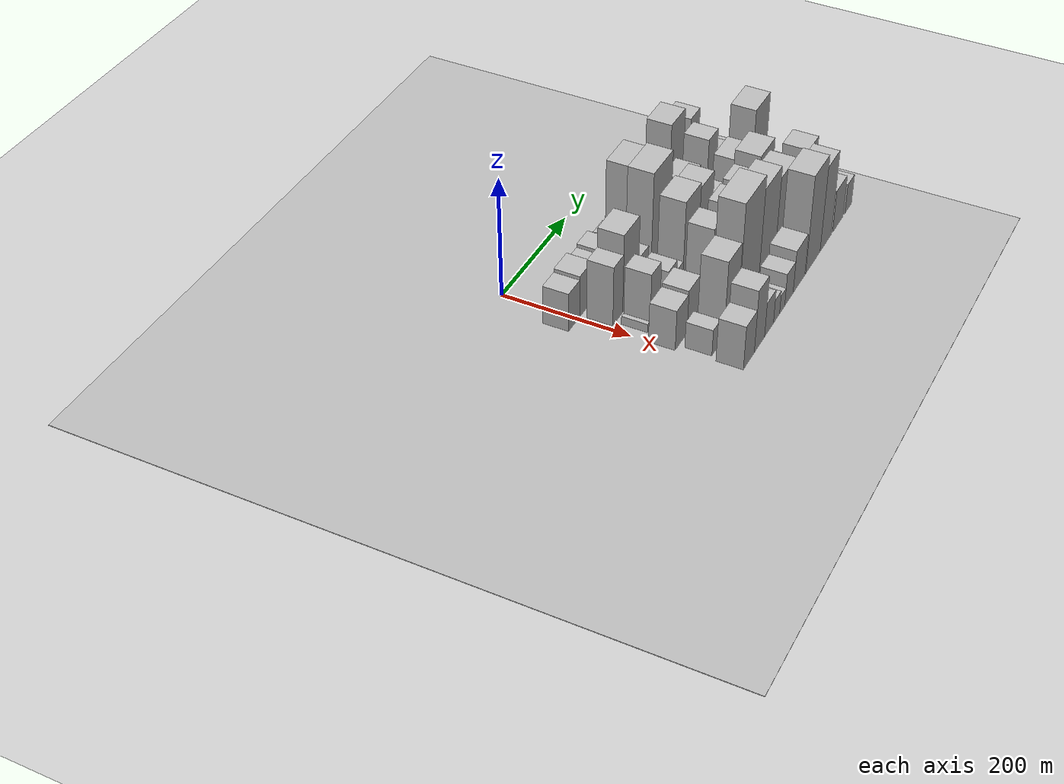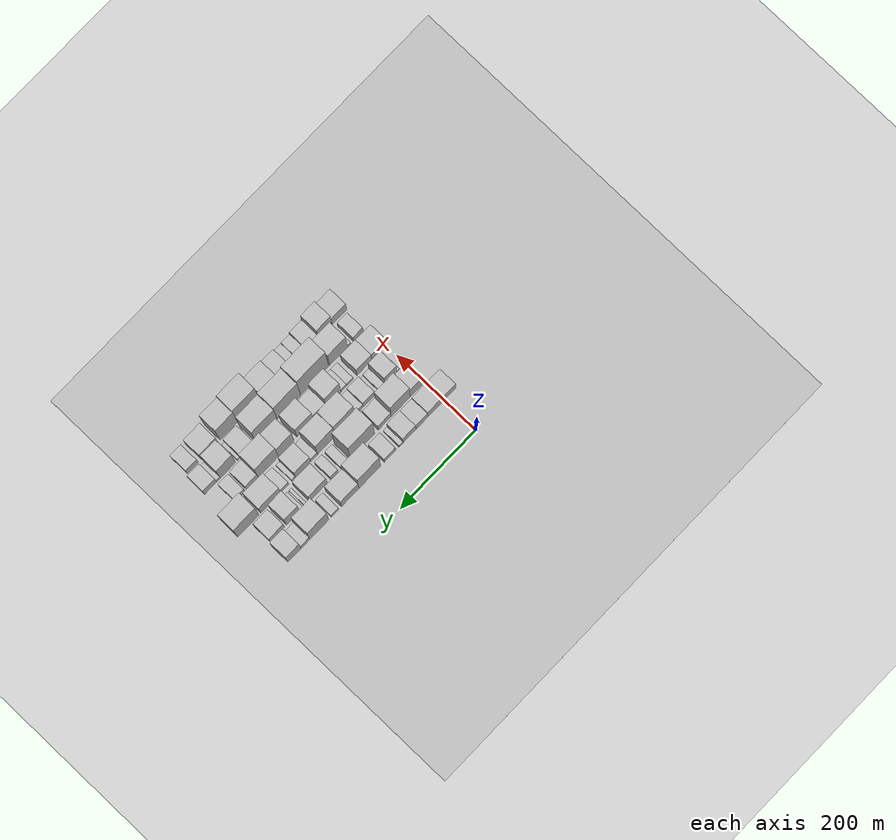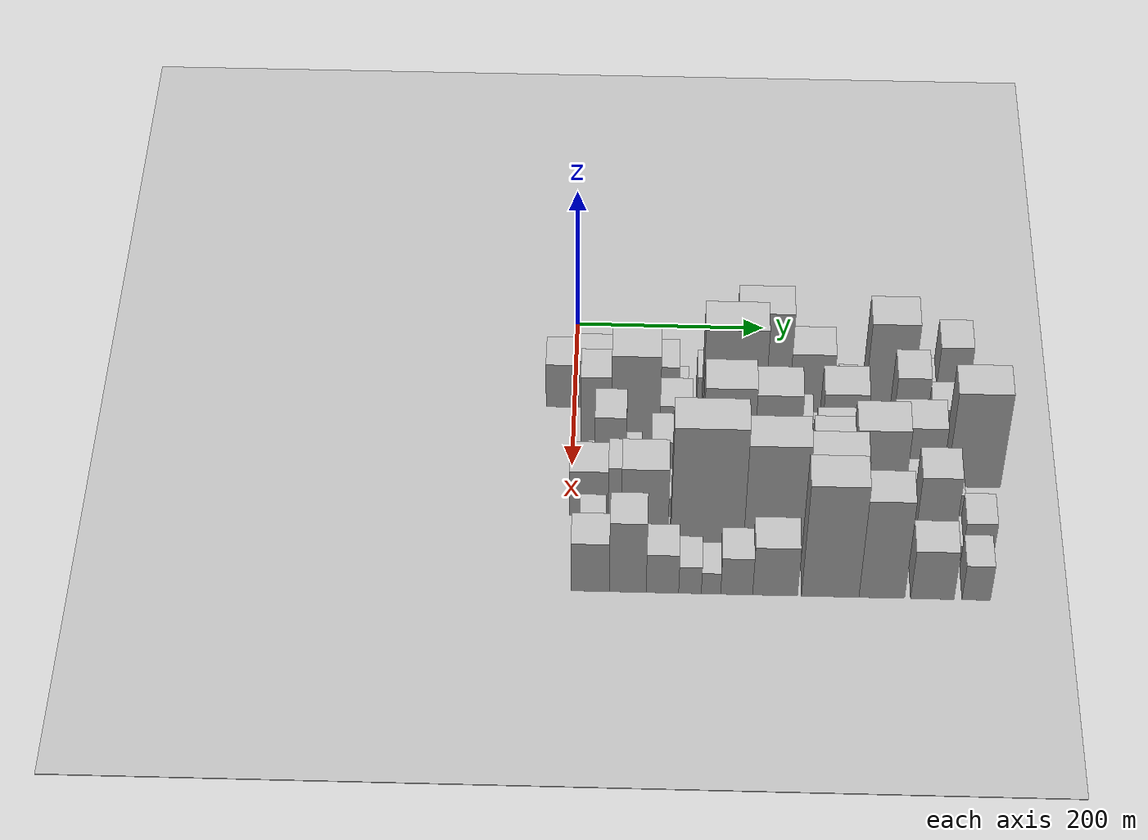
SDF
<sdf version="1.6">
 <world name="default">
  <include><name>ground_plane_1</name><uri>model://HANNAS_ground_plane</uri></include>
  <include>
   <name>ground_plane_2</name>
   <uri>model://HANNAS_ground_plane</uri>
   <pose>100 0 0  0 0 0</pose>
  </include>
  <model name="building_29">
   <static>1</static>
   <pose>100.0000 -12.7540 0 0.000000 0.000000 0.000000</pose>
   <link name="link">
    <pose>0 0 33.00 0 0 0</pose>
    <collision name="collision"><geometry><box><size>40.0000 34.4102 66.0000</size></box></geometry></collision>
    <visual name="visual">
     <cast_shadows>0</cast_shadows>
     <geometry><box><size>40.0000 34.4102 66.0000</size></box></geometry>
     <material>
      <script>
       <uri>model://HANNAS_wall/materials/scripts</uri>
       <uri>model://HANNAS_wall/materials/textures</uri>
       <name>vrc/HANNAS_wall</name>
      </script>
     </material>
    </visual>
   </link>
  </model>
  <model name="building_30">
   <static>1</static>
   <pose>100.0000 24.2124 0 0.000000 0.000000 0.000000</pose>
   <link name="link">
    <pose>0 0 36.00 0 0 0</pose>
    <collision name="collision"><geometry><box><size>40.0000 39.5224 72.0000</size></box></geometry></collision>
    <visual name="visual">
     <cast_shadows>0</cast_shadows>
     <geometry><box><size>40.0000 39.5224 72.0000</size></box></geometry>
     <material>
      <script>
       <uri>model://HANNAS_wall/materials/scripts</uri>
       <uri>model://HANNAS_wall/materials/textures</uri>
       <name>vrc/HANNAS_wall</name>
      </script>
     </material>
    </visual>
   </link>
  </model>
  <model name="building_31">
   <static>1</static>
   <pose>100.0000 59.7044 0 0.000000 0.000000 0.000000</pose>
   <link name="link">
    <pose>0 0 30.00 0 0 0</pose>
    <collision name="collision"><geometry><box><size>40.0000 31.4618 60.0000</size></box></geometry></collision>
    <visual name="visual">
     <cast_shadows>0</cast_shadows>
     <geometry><box><size>40.0000 31.4618 60.0000</size></box></geometry>
     <material>
      <script>
       <uri>model://HANNAS_wall/materials/scripts</uri>
       <uri>model://HANNAS_wall/materials/textures</uri>
       <name>vrc/HANNAS_wall</name>
      </script>
     </material>
    </visual>
   </link>
  </model>
  <model name="building_32">
   <static>1</static>
   <pose>100.0000 92.4821 0 0.000000 0.000000 0.000000</pose>
   <link name="link">
    <pose>0 0 33.00 0 0 0</pose>
    <collision name="collision"><geometry><box><size>40.0000 34.0936 66.0000</size></box></geometry></collision>
    <visual name="visual">
     <cast_shadows>0</cast_shadows>
     <geometry><box><size>40.0000 34.0936 66.0000</size></box></geometry>
     <material>
      <script>
       <uri>model://HANNAS_wall/materials/scripts</uri>
       <uri>model://HANNAS_wall/materials/textures</uri>
       <name>vrc/HANNAS_wall</name>
      </script>
     </material>
    </visual>
   </link>
  </model>
  <model name="building_33">
   <static>1</static>
   <pose>100.0000 114.5260 0 0.000000 0.000000 0.000000</pose>
   <link name="link">
    <pose>0 0 12.00 0 0 0</pose>
    <collision name="collision"><geometry><box><size>40.0000 9.9941 24.0000</size></box></geometry></collision>
    <visual name="visual">
     <cast_shadows>0</cast_shadows>
     <geometry><box><size>40.0000 9.9941 24.0000</size></box></geometry>
     <material>
      <script>
       <uri>model://HANNAS_wall/materials/scripts</uri>
       <uri>model://HANNAS_wall/materials/textures</uri>
       <name>vrc/HANNAS_wall</name>
      </script>
     </material>
    </visual>
   </link>
  </model>
  <model name="building_34">
   <static>1</static>
   <pose>100.0000 143.4806 0 0.000000 0.000000 0.000000</pose>
   <link name="link">
    <pose>0 0 25.50 0 0 0</pose>
    <collision name="collision"><geometry><box><size>40.0000 29.9153 51.0000</size></box></geometry></collision>
    <visual name="visual">
     <cast_shadows>0</cast_shadows>
     <geometry><box><size>40.0000 29.9153 51.0000</size></box></geometry>
     <material>
      <script>
       <uri>model://HANNAS_wall/materials/scripts</uri>
       <uri>model://HANNAS_wall/materials/textures</uri>
       <name>vrc/HANNAS_wall</name>
      </script>
     </material>
    </visual>
   </link>
  </model>
  <model name="building_35">
   <static>1</static>
   <pose>100.0000 196.8723 0 0.000000 0.000000 0.000000</pose>
   <link name="link">
    <pose>0 0 75.00 0 0 0</pose>
    <collision name="collision"><geometry><box><size>40.0000 56.8681 150.0000</size></box></geometry></collision>
    <visual name="visual">
     <cast_shadows>0</cast_shadows>
     <geometry><box><size>40.0000 56.8681 150.0000</size></box></geometry>
     <material>
      <script>
       <uri>model://HANNAS_wall/materials/scripts</uri>
       <uri>model://HANNAS_wall/materials/textures</uri>
       <name>vrc/HANNAS_wall</name>
      </script>
     </material>
    </visual>
   </link>
  </model>
  <model name="building_36">
   <static>1</static>
   <pose>100.0000 248.1590 0 0.000000 0.000000 0.000000</pose>
   <link name="link">
    <pose>0 0 45.00 0 0 0</pose>
    <collision name="collision"><geometry><box><size>40.0000 45.7053 90.0000</size></box></geometry></collision>
    <visual name="visual">
     <cast_shadows>0</cast_shadows>
     <geometry><box><size>40.0000 45.7053 90.0000</size></box></geometry>
     <material>
      <script>
       <uri>model://HANNAS_wall/materials/scripts</uri>
       <uri>model://HANNAS_wall/materials/textures</uri>
       <name>vrc/HANNAS_wall</name>
      </script>
     </material>
    </visual>
   </link>
  </model>
  <model name="building_37">
   <static>1</static>
   <pose>100.0000 287.7632 0 0.000000 0.000000 0.000000</pose>
   <link name="link">
    <pose>0 0 16.50 0 0 0</pose>
    <collision name="collision"><geometry><box><size>40.0000 19.5032 33.0000</size></box></geometry></collision>
    <visual name="visual">
     <cast_shadows>0</cast_shadows>
     <geometry><box><size>40.0000 19.5032 33.0000</size></box></geometry>
     <material>
      <script>
       <uri>model://HANNAS_wall/materials/scripts</uri>
       <uri>model://HANNAS_wall/materials/textures</uri>
       <name>vrc/HANNAS_wall</name>
      </script>
     </material>
    </visual>
   </link>
  </model>
  <model name="building_38">
   <static>1</static>
   <pose>100.0000 329.3629 0 0.000000 0.000000 0.000000</pose>
   <link name="link">
    <pose>0 0 69.00 0 0 0</pose>
    <collision name="collision"><geometry><box><size>40.0000 49.6962 138.0000</size></box></geometry></collision>
    <visual name="visual">
     <cast_shadows>0</cast_shadows>
     <geometry><box><size>40.0000 49.6962 138.0000</size></box></geometry>
     <material>
      <script>
       <uri>model://HANNAS_wall/materials/scripts</uri>
       <uri>model://HANNAS_wall/materials/textures</uri>
       <name>vrc/HANNAS_wall</name>
      </script>
     </material>
    </visual>
   </link>
  </model>
  <model name="building_39">
   <static>1</static>
   <pose>100.0000 365.7605 0 0.000000 0.000000 0.000000</pose>
   <link name="link">
    <pose>0 0 22.50 0 0 0</pose>
    <collision name="collision"><geometry><box><size>40.0000 23.0989 45.0000</size></box></geometry></collision>
    <visual name="visual">
     <cast_shadows>0</cast_shadows>
     <geometry><box><size>40.0000 23.0989 45.0000</size></box></geometry>
     <material>
      <script>
       <uri>model://HANNAS_wall/materials/scripts</uri>
       <uri>model://HANNAS_wall/materials/textures</uri>
       <name>vrc/HANNAS_wall</name>
      </script>
     </material>
    </visual>
   </link>
  </model>
  <model name="building_40">
   <static>1</static>
   <pose>100.0000 394.3797 0 0.000000 0.000000 0.000000</pose>
   <link name="link">
    <pose>0 0 52.50 0 0 0</pose>
    <collision name="collision"><geometry><box><size>40.0000 34.1395 105.0000</size></box></geometry></collision>
    <visual name="visual">
     <cast_shadows>0</cast_shadows>
     <geometry><box><size>40.0000 34.1395 105.0000</size></box></geometry>
     <material>
      <script>
       <uri>model://HANNAS_wall/materials/scripts</uri>
       <uri>model://HANNAS_wall/materials/textures</uri>
       <name>vrc/HANNAS_wall</name>
      </script>
     </material>
    </visual>
   </link>
  </model>
  <model name="building_73">
   <static>1</static>
   <pose>149.0000 23.6511 0 0.000000 0.000000 0.000000</pose>
   <link name="link">
    <pose>0 0 51.00 0 0 0</pose>
    <collision name="collision"><geometry><box><size>40.0000 31.7343 102.0000</size></box></geometry></collision>
    <visual name="visual">
     <cast_shadows>0</cast_shadows>
     <geometry><box><size>40.0000 31.7343 102.0000</size></box></geometry>
     <material>
      <script>
       <uri>model://HANNAS_wall/materials/scripts</uri>
       <uri>model://HANNAS_wall/materials/textures</uri>
       <name>vrc/HANNAS_wall</name>
      </script>
     </material>
    </visual>
   </link>
  </model>
  <model name="building_74">
   <static>1</static>
   <pose>149.0000 64.6249 0 0.000000 0.000000 0.000000</pose>
   <link name="link">
    <pose>0 0 67.50 0 0 0</pose>
    <collision name="collision"><geometry><box><size>40.0000 50.2134 135.0000</size></box></geometry></collision>
    <visual name="visual">
     <cast_shadows>0</cast_shadows>
     <geometry><box><size>40.0000 50.2134 135.0000</size></box></geometry>
     <material>
      <script>
       <uri>model://HANNAS_wall/materials/scripts</uri>
       <uri>model://HANNAS_wall/materials/textures</uri>
       <name>vrc/HANNAS_wall</name>
      </script>
     </material>
    </visual>
   </link>
  </model>
  <model name="building_75">
   <static>1</static>
   <pose>149.0000 106.4801 0 0.000000 0.000000 0.000000</pose>
   <link name="link">
    <pose>0 0 30.00 0 0 0</pose>
    <collision name="collision"><geometry><box><size>40.0000 33.4968 60.0000</size></box></geometry></collision>
    <visual name="visual">
     <cast_shadows>0</cast_shadows>
     <geometry><box><size>40.0000 33.4968 60.0000</size></box></geometry>
     <material>
      <script>
       <uri>model://HANNAS_wall/materials/scripts</uri>
       <uri>model://HANNAS_wall/materials/textures</uri>
       <name>vrc/HANNAS_wall</name>
      </script>
     </material>
    </visual>
   </link>
  </model>
  <model name="building_76">
   <static>1</static>
   <pose>149.0000 165.2671 0 0.000000 0.000000 0.000000</pose>
   <link name="link">
    <pose>0 0 88.50 0 0 0</pose>
    <collision name="collision"><geometry><box><size>40.0000 64.0772 177.0000</size></box></geometry></collision>
    <visual name="visual">
     <cast_shadows>0</cast_shadows>
     <geometry><box><size>40.0000 64.0772 177.0000</size></box></geometry>
     <material>
      <script>
       <uri>model://HANNAS_wall/materials/scripts</uri>
       <uri>model://HANNAS_wall/materials/textures</uri>
       <name>vrc/HANNAS_wall</name>
      </script>
     </material>
    </visual>
   </link>
  </model>
  <model name="building_77">
   <static>1</static>
   <pose>149.0000 212.1915 0 0.000000 0.000000 0.000000</pose>
   <link name="link">
    <pose>0 0 16.50 0 0 0</pose>
    <collision name="collision"><geometry><box><size>40.0000 19.7717 33.0000</size></box></geometry></collision>
    <visual name="visual">
     <cast_shadows>0</cast_shadows>
     <geometry><box><size>40.0000 19.7717 33.0000</size></box></geometry>
     <material>
      <script>
       <uri>model://HANNAS_wall/materials/scripts</uri>
       <uri>model://HANNAS_wall/materials/textures</uri>
       <name>vrc/HANNAS_wall</name>
      </script>
     </material>
    </visual>
   </link>
  </model>
  <model name="building_78">
   <static>1</static>
   <pose>149.0000 238.9946 0 0.000000 0.000000 0.000000</pose>
   <link name="link">
    <pose>0 0 19.50 0 0 0</pose>
    <collision name="collision"><geometry><box><size>40.0000 19.8344 39.0000</size></box></geometry></collision>
    <visual name="visual">
     <cast_shadows>0</cast_shadows>
     <geometry><box><size>40.0000 19.8344 39.0000</size></box></geometry>
     <material>
      <script>
       <uri>model://HANNAS_wall/materials/scripts</uri>
       <uri>model://HANNAS_wall/materials/textures</uri>
       <name>vrc/HANNAS_wall</name>
      </script>
     </material>
    </visual>
   </link>
  </model>
  <model name="building_79">
   <static>1</static>
   <pose>149.0000 281.2073 0 0.000000 0.000000 0.000000</pose>
   <link name="link">
    <pose>0 0 42.00 0 0 0</pose>
    <collision name="collision"><geometry><box><size>40.0000 46.5912 84.0000</size></box></geometry></collision>
    <visual name="visual">
     <cast_shadows>0</cast_shadows>
     <geometry><box><size>40.0000 46.5912 84.0000</size></box></geometry>
     <material>
      <script>
       <uri>model://HANNAS_wall/materials/scripts</uri>
       <uri>model://HANNAS_wall/materials/textures</uri>
       <name>vrc/HANNAS_wall</name>
      </script>
     </material>
    </visual>
   </link>
  </model>
  <model name="building_80">
   <static>1</static>
   <pose>149.0000 313.6733 0 0.000000 0.000000 0.000000</pose>
   <link name="link">
    <pose>0 0 7.50 0 0 0</pose>
    <collision name="collision"><geometry><box><size>40.0000 6.3408 15.0000</size></box></geometry></collision>
    <visual name="visual">
     <cast_shadows>0</cast_shadows>
     <geometry><box><size>40.0000 6.3408 15.0000</size></box></geometry>
     <material>
      <script>
       <uri>model://HANNAS_wall/materials/scripts</uri>
       <uri>model://HANNAS_wall/materials/textures</uri>
       <name>vrc/HANNAS_wall</name>
      </script>
     </material>
    </visual>
   </link>
  </model>
  <model name="building_81">
   <static>1</static>
   <pose>149.0000 325.6445 0 0.000000 0.000000 0.000000</pose>
   <link name="link">
    <pose>0 0 10.50 0 0 0</pose>
    <collision name="collision"><geometry><box><size>40.0000 9.6014 21.0000</size></box></geometry></collision>
    <visual name="visual">
     <cast_shadows>0</cast_shadows>
     <geometry><box><size>40.0000 9.6014 21.0000</size></box></geometry>
     <material>
      <script>
       <uri>model://HANNAS_wall/materials/scripts</uri>
       <uri>model://HANNAS_wall/materials/textures</uri>
       <name>vrc/HANNAS_wall</name>
      </script>
     </material>
    </visual>
   </link>
  </model>
  <model name="building_82">
   <static>1</static>
   <pose>149.0000 347.6418 0 0.000000 0.000000 0.000000</pose>
   <link name="link">
    <pose>0 0 55.50 0 0 0</pose>
    <collision name="collision"><geometry><box><size>40.0000 34.3931 111.0000</size></box></geometry></collision>
    <visual name="visual">
     <cast_shadows>0</cast_shadows>
     <geometry><box><size>40.0000 34.3931 111.0000</size></box></geometry>
     <material>
      <script>
       <uri>model://HANNAS_wall/materials/scripts</uri>
       <uri>model://HANNAS_wall/materials/textures</uri>
       <name>vrc/HANNAS_wall</name>
      </script>
     </material>
    </visual>
   </link>
  </model>
  <model name="building_83">
   <static>1</static>
   <pose>149.0000 388.6411 0 0.000000 0.000000 0.000000</pose>
   <link name="link">
    <pose>0 0 31.50 0 0 0</pose>
    <collision name="collision"><geometry><box><size>40.0000 37.6056 63.0000</size></box></geometry></collision>
    <visual name="visual">
     <cast_shadows>0</cast_shadows>
     <geometry><box><size>40.0000 37.6056 63.0000</size></box></geometry>
     <material>
      <script>
       <uri>model://HANNAS_wall/materials/scripts</uri>
       <uri>model://HANNAS_wall/materials/textures</uri>
       <name>vrc/HANNAS_wall</name>
      </script>
     </material>
    </visual>
   </link>
  </model>
  <model name="building_118">
   <static>1</static>
   <pose>198.0000 19.8685 0 0.000000 0.000000 0.000000</pose>
   <link name="link">
    <pose>0 0 7.50 0 0 0</pose>
    <collision name="collision"><geometry><box><size>40.0000 7.2244 15.0000</size></box></geometry></collision>
    <visual name="visual">
     <cast_shadows>0</cast_shadows>
     <geometry><box><size>40.0000 7.2244 15.0000</size></box></geometry>
     <material>
      <script>
       <uri>model://HANNAS_wall/materials/scripts</uri>
       <uri>model://HANNAS_wall/materials/textures</uri>
       <name>vrc/HANNAS_wall</name>
      </script>
     </material>
    </visual>
   </link>
  </model>
  <model name="building_119">
   <static>1</static>
   <pose>198.0000 39.6027 0 0.000000 0.000000 0.000000</pose>
   <link name="link">
    <pose>0 0 48.00 0 0 0</pose>
    <collision name="collision"><geometry><box><size>40.0000 32.2441 96.0000</size></box></geometry></collision>
    <visual name="visual">
     <cast_shadows>0</cast_shadows>
     <geometry><box><size>40.0000 32.2441 96.0000</size></box></geometry>
     <material>
      <script>
       <uri>model://HANNAS_wall/materials/scripts</uri>
       <uri>model://HANNAS_wall/materials/textures</uri>
       <name>vrc/HANNAS_wall</name>
      </script>
     </material>
    </visual>
   </link>
  </model>
  <model name="building_120">
   <static>1</static>
   <pose>198.0000 63.8771 0 0.000000 0.000000 0.000000</pose>
   <link name="link">
    <pose>0 0 15.00 0 0 0</pose>
    <collision name="collision"><geometry><box><size>40.0000 16.3047 30.0000</size></box></geometry></collision>
    <visual name="visual">
     <cast_shadows>0</cast_shadows>
     <geometry><box><size>40.0000 16.3047 30.0000</size></box></geometry>
     <material>
      <script>
       <uri>model://HANNAS_wall/materials/scripts</uri>
       <uri>model://HANNAS_wall/materials/textures</uri>
       <name>vrc/HANNAS_wall</name>
      </script>
     </material>
    </visual>
   </link>
  </model>
  <model name="building_121">
   <static>1</static>
   <pose>198.0000 75.4030 0 0.000000 0.000000 0.000000</pose>
   <link name="link">
    <pose>0 0 7.50 0 0 0</pose>
    <collision name="collision"><geometry><box><size>40.0000 6.7471 15.0000</size></box></geometry></collision>
    <visual name="visual">
     <cast_shadows>0</cast_shadows>
     <geometry><box><size>40.0000 6.7471 15.0000</size></box></geometry>
     <material>
      <script>
       <uri>model://HANNAS_wall/materials/scripts</uri>
       <uri>model://HANNAS_wall/materials/textures</uri>
       <name>vrc/HANNAS_wall</name>
      </script>
     </material>
    </visual>
   </link>
  </model>
  <model name="building_122">
   <static>1</static>
   <pose>198.0000 97.0506 0 0.000000 0.000000 0.000000</pose>
   <link name="link">
    <pose>0 0 30.00 0 0 0</pose>
    <collision name="collision"><geometry><box><size>40.0000 30.5480 60.0000</size></box></geometry></collision>
    <visual name="visual">
     <cast_shadows>0</cast_shadows>
     <geometry><box><size>40.0000 30.5480 60.0000</size></box></geometry>
     <material>
      <script>
       <uri>model://HANNAS_wall/materials/scripts</uri>
       <uri>model://HANNAS_wall/materials/textures</uri>
       <name>vrc/HANNAS_wall</name>
      </script>
     </material>
    </visual>
   </link>
  </model>
  <model name="building_123">
   <static>1</static>
   <pose>198.0000 123.0904 0 0.000000 0.000000 0.000000</pose>
   <link name="link">
    <pose>0 0 21.00 0 0 0</pose>
    <collision name="collision"><geometry><box><size>40.0000 21.5316 42.0000</size></box></geometry></collision>
    <visual name="visual">
     <cast_shadows>0</cast_shadows>
     <geometry><box><size>40.0000 21.5316 42.0000</size></box></geometry>
     <material>
      <script>
       <uri>model://HANNAS_wall/materials/scripts</uri>
       <uri>model://HANNAS_wall/materials/textures</uri>
       <name>vrc/HANNAS_wall</name>
      </script>
     </material>
    </visual>
   </link>
  </model>
  <model name="building_124">
   <static>1</static>
   <pose>198.0000 160.0146 0 0.000000 0.000000 0.000000</pose>
   <link name="link">
    <pose>0 0 72.00 0 0 0</pose>
    <collision name="collision"><geometry><box><size>40.0000 52.3167 144.0000</size></box></geometry></collision>
    <visual name="visual">
     <cast_shadows>0</cast_shadows>
     <geometry><box><size>40.0000 52.3167 144.0000</size></box></geometry>
     <material>
      <script>
       <uri>model://HANNAS_wall/materials/scripts</uri>
       <uri>model://HANNAS_wall/materials/textures</uri>
       <name>vrc/HANNAS_wall</name>
      </script>
     </material>
    </visual>
   </link>
  </model>
  <model name="building_125">
   <static>1</static>
   <pose>198.0000 209.4716 0 0.000000 0.000000 0.000000</pose>
   <link name="link">
    <pose>0 0 67.50 0 0 0</pose>
    <collision name="collision"><geometry><box><size>40.0000 46.5974 135.0000</size></box></geometry></collision>
    <visual name="visual">
     <cast_shadows>0</cast_shadows>
     <geometry><box><size>40.0000 46.5974 135.0000</size></box></geometry>
     <material>
      <script>
       <uri>model://HANNAS_wall/materials/scripts</uri>
       <uri>model://HANNAS_wall/materials/textures</uri>
       <name>vrc/HANNAS_wall</name>
      </script>
     </material>
    </visual>
   </link>
  </model>
  <model name="building_126">
   <static>1</static>
   <pose>198.0000 241.7214 0 0.000000 0.000000 0.000000</pose>
   <link name="link">
    <pose>0 0 16.50 0 0 0</pose>
    <collision name="collision"><geometry><box><size>40.0000 17.9022 33.0000</size></box></geometry></collision>
    <visual name="visual">
     <cast_shadows>0</cast_shadows>
     <geometry><box><size>40.0000 17.9022 33.0000</size></box></geometry>
     <material>
      <script>
       <uri>model://HANNAS_wall/materials/scripts</uri>
       <uri>model://HANNAS_wall/materials/textures</uri>
       <name>vrc/HANNAS_wall</name>
      </script>
     </material>
    </visual>
   </link>
  </model>
  <model name="building_127">
   <static>1</static>
   <pose>198.0000 270.5692 0 0.000000 0.000000 0.000000</pose>
   <link name="link">
    <pose>0 0 37.50 0 0 0</pose>
    <collision name="collision"><geometry><box><size>40.0000 39.7934 75.0000</size></box></geometry></collision>
    <visual name="visual">
     <cast_shadows>0</cast_shadows>
     <geometry><box><size>40.0000 39.7934 75.0000</size></box></geometry>
     <material>
      <script>
       <uri>model://HANNAS_wall/materials/scripts</uri>
       <uri>model://HANNAS_wall/materials/textures</uri>
       <name>vrc/HANNAS_wall</name>
      </script>
     </material>
    </visual>
   </link>
  </model>
  <model name="building_128">
   <static>1</static>
   <pose>198.0000 295.3435 0 0.000000 0.000000 0.000000</pose>
   <link name="link">
    <pose>0 0 10.50 0 0 0</pose>
    <collision name="collision"><geometry><box><size>40.0000 9.7551 21.0000</size></box></geometry></collision>
    <visual name="visual">
     <cast_shadows>0</cast_shadows>
     <geometry><box><size>40.0000 9.7551 21.0000</size></box></geometry>
     <material>
      <script>
       <uri>model://HANNAS_wall/materials/scripts</uri>
       <uri>model://HANNAS_wall/materials/textures</uri>
       <name>vrc/HANNAS_wall</name>
      </script>
     </material>
    </visual>
   </link>
  </model>
  <model name="building_129">
   <static>1</static>
   <pose>198.0000 318.8275 0 0.000000 0.000000 0.000000</pose>
   <link name="link">
    <pose>0 0 21.00 0 0 0</pose>
    <collision name="collision"><geometry><box><size>40.0000 21.2130 42.0000</size></box></geometry></collision>
    <visual name="visual">
     <cast_shadows>0</cast_shadows>
     <geometry><box><size>40.0000 21.2130 42.0000</size></box></geometry>
     <material>
      <script>
       <uri>model://HANNAS_wall/materials/scripts</uri>
       <uri>model://HANNAS_wall/materials/textures</uri>
       <name>vrc/HANNAS_wall</name>
      </script>
     </material>
    </visual>
   </link>
  </model>
  <model name="building_130">
   <static>1</static>
   <pose>198.0000 355.3251 0 0.000000 0.000000 0.000000</pose>
   <link name="link">
    <pose>0 0 45.00 0 0 0</pose>
    <collision name="collision"><geometry><box><size>40.0000 51.7822 90.0000</size></box></geometry></collision>
    <visual name="visual">
     <cast_shadows>0</cast_shadows>
     <geometry><box><size>40.0000 51.7822 90.0000</size></box></geometry>
     <material>
      <script>
       <uri>model://HANNAS_wall/materials/scripts</uri>
       <uri>model://HANNAS_wall/materials/textures</uri>
       <name>vrc/HANNAS_wall</name>
      </script>
     </material>
    </visual>
   </link>
  </model>
  <model name="building_131">
   <static>1</static>
   <pose>198.0000 413.9078 0 0.000000 0.000000 0.000000</pose>
   <link name="link">
    <pose>0 0 72.00 0 0 0</pose>
    <collision name="collision"><geometry><box><size>40.0000 55.3831 144.0000</size></box></geometry></collision>
    <visual name="visual">
     <cast_shadows>0</cast_shadows>
     <geometry><box><size>40.0000 55.3831 144.0000</size></box></geometry>
     <material>
      <script>
       <uri>model://HANNAS_wall/materials/scripts</uri>
       <uri>model://HANNAS_wall/materials/textures</uri>
       <name>vrc/HANNAS_wall</name>
      </script>
     </material>
    </visual>
   </link>
  </model>
  <model name="building_166">
   <static>1</static>
   <pose>247.0000 18.6204 0 0.000000 0.000000 0.000000</pose>
   <link name="link">
    <pose>0 0 34.50 0 0 0</pose>
    <collision name="collision"><geometry><box><size>40.0000 39.7230 69.0000</size></box></geometry></collision>
    <visual name="visual">
     <cast_shadows>0</cast_shadows>
     <geometry><box><size>40.0000 39.7230 69.0000</size></box></geometry>
     <material>
      <script>
       <uri>model://HANNAS_wall/materials/scripts</uri>
       <uri>model://HANNAS_wall/materials/textures</uri>
       <name>vrc/HANNAS_wall</name>
      </script>
     </material>
    </visual>
   </link>
  </model>
  <model name="building_167">
   <static>1</static>
   <pose>247.0000 58.2097 0 0.000000 0.000000 0.000000</pose>
   <link name="link">
    <pose>0 0 37.50 0 0 0</pose>
    <collision name="collision"><geometry><box><size>40.0000 39.4558 75.0000</size></box></geometry></collision>
    <visual name="visual">
     <cast_shadows>0</cast_shadows>
     <geometry><box><size>40.0000 39.4558 75.0000</size></box></geometry>
     <material>
      <script>
       <uri>model://HANNAS_wall/materials/scripts</uri>
       <uri>model://HANNAS_wall/materials/textures</uri>
       <name>vrc/HANNAS_wall</name>
      </script>
     </material>
    </visual>
   </link>
  </model>
  <model name="building_168">
   <static>1</static>
   <pose>247.0000 96.4677 0 0.000000 0.000000 0.000000</pose>
   <link name="link">
    <pose>0 0 15.00 0 0 0</pose>
    <collision name="collision"><geometry><box><size>40.0000 17.0602 30.0000</size></box></geometry></collision>
    <visual name="visual">
     <cast_shadows>0</cast_shadows>
     <geometry><box><size>40.0000 17.0602 30.0000</size></box></geometry>
     <material>
      <script>
       <uri>model://HANNAS_wall/materials/scripts</uri>
       <uri>model://HANNAS_wall/materials/textures</uri>
       <name>vrc/HANNAS_wall</name>
      </script>
     </material>
    </visual>
   </link>
  </model>
  <model name="building_169">
   <static>1</static>
   <pose>247.0000 112.6482 0 0.000000 0.000000 0.000000</pose>
   <link name="link">
    <pose>0 0 15.00 0 0 0</pose>
    <collision name="collision"><geometry><box><size>40.0000 15.3010 30.0000</size></box></geometry></collision>
    <visual name="visual">
     <cast_shadows>0</cast_shadows>
     <geometry><box><size>40.0000 15.3010 30.0000</size></box></geometry>
     <material>
      <script>
       <uri>model://HANNAS_wall/materials/scripts</uri>
       <uri>model://HANNAS_wall/materials/textures</uri>
       <name>vrc/HANNAS_wall</name>
      </script>
     </material>
    </visual>
   </link>
  </model>
  <model name="building_170">
   <static>1</static>
   <pose>247.0000 139.9405 0 0.000000 0.000000 0.000000</pose>
   <link name="link">
    <pose>0 0 61.50 0 0 0</pose>
    <collision name="collision"><geometry><box><size>40.0000 39.2836 123.0000</size></box></geometry></collision>
    <visual name="visual">
     <cast_shadows>0</cast_shadows>
     <geometry><box><size>40.0000 39.2836 123.0000</size></box></geometry>
     <material>
      <script>
       <uri>model://HANNAS_wall/materials/scripts</uri>
       <uri>model://HANNAS_wall/materials/textures</uri>
       <name>vrc/HANNAS_wall</name>
      </script>
     </material>
    </visual>
   </link>
  </model>
  <model name="building_171">
   <static>1</static>
   <pose>247.0000 176.0166 0 0.000000 0.000000 0.000000</pose>
   <link name="link">
    <pose>0 0 31.50 0 0 0</pose>
    <collision name="collision"><geometry><box><size>40.0000 32.8686 63.0000</size></box></geometry></collision>
    <visual name="visual">
     <cast_shadows>0</cast_shadows>
     <geometry><box><size>40.0000 32.8686 63.0000</size></box></geometry>
     <material>
      <script>
       <uri>model://HANNAS_wall/materials/scripts</uri>
       <uri>model://HANNAS_wall/materials/textures</uri>
       <name>vrc/HANNAS_wall</name>
      </script>
     </material>
    </visual>
   </link>
  </model>
  <model name="building_172">
   <static>1</static>
   <pose>247.0000 214.1461 0 0.000000 0.000000 0.000000</pose>
   <link name="link">
    <pose>0 0 57.00 0 0 0</pose>
    <collision name="collision"><geometry><box><size>40.0000 43.3905 114.0000</size></box></geometry></collision>
    <visual name="visual">
     <cast_shadows>0</cast_shadows>
     <geometry><box><size>40.0000 43.3905 114.0000</size></box></geometry>
     <material>
      <script>
       <uri>model://HANNAS_wall/materials/scripts</uri>
       <uri>model://HANNAS_wall/materials/textures</uri>
       <name>vrc/HANNAS_wall</name>
      </script>
     </material>
    </visual>
   </link>
  </model>
  <model name="building_173">
   <static>1</static>
   <pose>247.0000 264.3041 0 0.000000 0.000000 0.000000</pose>
   <link name="link">
    <pose>0 0 58.50 0 0 0</pose>
    <collision name="collision"><geometry><box><size>40.0000 40.9255 117.0000</size></box></geometry></collision>
    <visual name="visual">
     <cast_shadows>0</cast_shadows>
     <geometry><box><size>40.0000 40.9255 117.0000</size></box></geometry>
     <material>
      <script>
       <uri>model://HANNAS_wall/materials/scripts</uri>
       <uri>model://HANNAS_wall/materials/textures</uri>
       <name>vrc/HANNAS_wall</name>
      </script>
     </material>
    </visual>
   </link>
  </model>
  <model name="building_174">
   <static>1</static>
   <pose>247.0000 311.3295 0 0.000000 0.000000 0.000000</pose>
   <link name="link">
    <pose>0 0 70.50 0 0 0</pose>
    <collision name="collision"><geometry><box><size>40.0000 53.1252 141.0000</size></box></geometry></collision>
    <visual name="visual">
     <cast_shadows>0</cast_shadows>
     <geometry><box><size>40.0000 53.1252 141.0000</size></box></geometry>
     <material>
      <script>
       <uri>model://HANNAS_wall/materials/scripts</uri>
       <uri>model://HANNAS_wall/materials/textures</uri>
       <name>vrc/HANNAS_wall</name>
      </script>
     </material>
    </visual>
   </link>
  </model>
  <model name="building_175">
   <static>1</static>
   <pose>247.0000 353.2796 0 0.000000 0.000000 0.000000</pose>
   <link name="link">
    <pose>0 0 27.00 0 0 0</pose>
    <collision name="collision"><geometry><box><size>40.0000 30.7750 54.0000</size></box></geometry></collision>
    <visual name="visual">
     <cast_shadows>0</cast_shadows>
     <geometry><box><size>40.0000 30.7750 54.0000</size></box></geometry>
     <material>
      <script>
       <uri>model://HANNAS_wall/materials/scripts</uri>
       <uri>model://HANNAS_wall/materials/textures</uri>
       <name>vrc/HANNAS_wall</name>
      </script>
     </material>
    </visual>
   </link>
  </model>
  <model name="building_176">
   <static>1</static>
   <pose>247.0000 385.8901 0 0.000000 0.000000 0.000000</pose>
   <link name="link">
    <pose>0 0 22.50 0 0 0</pose>
    <collision name="collision"><geometry><box><size>40.0000 26.4461 45.0000</size></box></geometry></collision>
    <visual name="visual">
     <cast_shadows>0</cast_shadows>
     <geometry><box><size>40.0000 26.4461 45.0000</size></box></geometry>
     <material>
      <script>
       <uri>model://HANNAS_wall/materials/scripts</uri>
       <uri>model://HANNAS_wall/materials/textures</uri>
       <name>vrc/HANNAS_wall</name>
      </script>
     </material>
    </visual>
   </link>
  </model>
  <model name="building_215">
   <static>1</static>
   <pose>296.0000 23.7324 0 0.000000 0.000000 0.000000</pose>
   <link name="link">
    <pose>0 0 22.50 0 0 0</pose>
    <collision name="collision"><geometry><box><size>40.0000 26.1414 45.0000</size></box></geometry></collision>
    <visual name="visual">
     <cast_shadows>0</cast_shadows>
     <geometry><box><size>40.0000 26.1414 45.0000</size></box></geometry>
     <material>
      <script>
       <uri>model://HANNAS_wall/materials/scripts</uri>
       <uri>model://HANNAS_wall/materials/textures</uri>
       <name>vrc/HANNAS_wall</name>
      </script>
     </material>
    </visual>
   </link>
  </model>
  <model name="building_216">
   <static>1</static>
   <pose>296.0000 48.0554 0 0.000000 0.000000 0.000000</pose>
   <link name="link">
    <pose>0 0 10.50 0 0 0</pose>
    <collision name="collision"><geometry><box><size>40.0000 8.5046 21.0000</size></box></geometry></collision>
    <visual name="visual">
     <cast_shadows>0</cast_shadows>
     <geometry><box><size>40.0000 8.5046 21.0000</size></box></geometry>
     <material>
      <script>
       <uri>model://HANNAS_wall/materials/scripts</uri>
       <uri>model://HANNAS_wall/materials/textures</uri>
       <name>vrc/HANNAS_wall</name>
      </script>
     </material>
    </visual>
   </link>
  </model>
  <model name="building_217">
   <static>1</static>
   <pose>296.0000 75.7813 0 0.000000 0.000000 0.000000</pose>
   <link name="link">
    <pose>0 0 66.00 0 0 0</pose>
    <collision name="collision"><geometry><box><size>40.0000 46.9473 132.0000</size></box></geometry></collision>
    <visual name="visual">
     <cast_shadows>0</cast_shadows>
     <geometry><box><size>40.0000 46.9473 132.0000</size></box></geometry>
     <material>
      <script>
       <uri>model://HANNAS_wall/materials/scripts</uri>
       <uri>model://HANNAS_wall/materials/textures</uri>
       <name>vrc/HANNAS_wall</name>
      </script>
     </material>
    </visual>
   </link>
  </model>
  <model name="building_218">
   <static>1</static>
   <pose>296.0000 138.9199 0 0.000000 0.000000 0.000000</pose>
   <link name="link">
    <pose>0 0 97.50 0 0 0</pose>
    <collision name="collision"><geometry><box><size>40.0000 73.3298 195.0000</size></box></geometry></collision>
    <visual name="visual">
     <cast_shadows>0</cast_shadows>
     <geometry><box><size>40.0000 73.3298 195.0000</size></box></geometry>
     <material>
      <script>
       <uri>model://HANNAS_wall/materials/scripts</uri>
       <uri>model://HANNAS_wall/materials/textures</uri>
       <name>vrc/HANNAS_wall</name>
      </script>
     </material>
    </visual>
   </link>
  </model>
  <model name="building_219">
   <static>1</static>
   <pose>296.0000 206.3007 0 0.000000 0.000000 0.000000</pose>
   <link name="link">
    <pose>0 0 85.50 0 0 0</pose>
    <collision name="collision"><geometry><box><size>40.0000 61.4318 171.0000</size></box></geometry></collision>
    <visual name="visual">
     <cast_shadows>0</cast_shadows>
     <geometry><box><size>40.0000 61.4318 171.0000</size></box></geometry>
     <material>
      <script>
       <uri>model://HANNAS_wall/materials/scripts</uri>
       <uri>model://HANNAS_wall/materials/textures</uri>
       <name>vrc/HANNAS_wall</name>
      </script>
     </material>
    </visual>
   </link>
  </model>
  <model name="building_220">
   <static>1</static>
   <pose>296.0000 265.6187 0 0.000000 0.000000 0.000000</pose>
   <link name="link">
    <pose>0 0 75.00 0 0 0</pose>
    <collision name="collision"><geometry><box><size>40.0000 57.2040 150.0000</size></box></geometry></collision>
    <visual name="visual">
     <cast_shadows>0</cast_shadows>
     <geometry><box><size>40.0000 57.2040 150.0000</size></box></geometry>
     <material>
      <script>
       <uri>model://HANNAS_wall/materials/scripts</uri>
       <uri>model://HANNAS_wall/materials/textures</uri>
       <name>vrc/HANNAS_wall</name>
      </script>
     </material>
    </visual>
   </link>
  </model>
  <model name="building_221">
   <static>1</static>
   <pose>296.0000 316.9497 0 0.000000 0.000000 0.000000</pose>
   <link name="link">
    <pose>0 0 30.00 0 0 0</pose>
    <collision name="collision"><geometry><box><size>40.0000 35.4579 60.0000</size></box></geometry></collision>
    <visual name="visual">
     <cast_shadows>0</cast_shadows>
     <geometry><box><size>40.0000 35.4579 60.0000</size></box></geometry>
     <material>
      <script>
       <uri>model://HANNAS_wall/materials/scripts</uri>
       <uri>model://HANNAS_wall/materials/textures</uri>
       <name>vrc/HANNAS_wall</name>
      </script>
     </material>
    </visual>
   </link>
  </model>
  <model name="building_222">
   <static>1</static>
   <pose>296.0000 338.1581 0 0.000000 0.000000 0.000000</pose>
   <link name="link">
    <pose>0 0 7.50 0 0 0</pose>
    <collision name="collision"><geometry><box><size>40.0000 6.9590 15.0000</size></box></geometry></collision>
    <visual name="visual">
     <cast_shadows>0</cast_shadows>
     <geometry><box><size>40.0000 6.9590 15.0000</size></box></geometry>
     <material>
      <script>
       <uri>model://HANNAS_wall/materials/scripts</uri>
       <uri>model://HANNAS_wall/materials/textures</uri>
       <name>vrc/HANNAS_wall</name>
      </script>
     </material>
    </visual>
   </link>
  </model>
  <model name="building_223">
   <static>1</static>
   <pose>296.0000 366.6450 0 0.000000 0.000000 0.000000</pose>
   <link name="link">
    <pose>0 0 64.50 0 0 0</pose>
    <collision name="collision"><geometry><box><size>40.0000 40.0147 129.0000</size></box></geometry></collision>
    <visual name="visual">
     <cast_shadows>0</cast_shadows>
     <geometry><box><size>40.0000 40.0147 129.0000</size></box></geometry>
     <material>
      <script>
       <uri>model://HANNAS_wall/materials/scripts</uri>
       <uri>model://HANNAS_wall/materials/textures</uri>
       <name>vrc/HANNAS_wall</name>
      </script>
     </material>
    </visual>
   </link>
  </model>
  <model name="building_224">
   <static>1</static>
   <pose>296.0000 391.4660 0 0.000000 0.000000 0.000000</pose>
   <link name="link">
    <pose>0 0 12.00 0 0 0</pose>
    <collision name="collision"><geometry><box><size>40.0000 9.6274 24.0000</size></box></geometry></collision>
    <visual name="visual">
     <cast_shadows>0</cast_shadows>
     <geometry><box><size>40.0000 9.6274 24.0000</size></box></geometry>
     <material>
      <script>
       <uri>model://HANNAS_wall/materials/scripts</uri>
       <uri>model://HANNAS_wall/materials/textures</uri>
       <name>vrc/HANNAS_wall</name>
      </script>
     </material>
    </visual>
   </link>
  </model>
  <model name="building_225">
   <static>1</static>
   <pose>296.0000 411.9077 0 0.000000 0.000000 0.000000</pose>
   <link name="link">
    <pose>0 0 30.00 0 0 0</pose>
    <collision name="collision"><geometry><box><size>40.0000 31.2559 60.0000</size></box></geometry></collision>
    <visual name="visual">
     <cast_shadows>0</cast_shadows>
     <geometry><box><size>40.0000 31.2559 60.0000</size></box></geometry>
     <material>
      <script>
       <uri>model://HANNAS_wall/materials/scripts</uri>
       <uri>model://HANNAS_wall/materials/textures</uri>
       <name>vrc/HANNAS_wall</name>
      </script>
     </material>
    </visual>
   </link>
  </model>
  <model name="building_261">
   <static>1</static>
   <pose>345.0000 22.5791 0 0.000000 0.000000 0.000000</pose>
   <link name="link">
    <pose>0 0 37.50 0 0 0</pose>
    <collision name="collision"><geometry><box><size>40.0000 38.3768 75.0000</size></box></geometry></collision>
    <visual name="visual">
     <cast_shadows>0</cast_shadows>
     <geometry><box><size>40.0000 38.3768 75.0000</size></box></geometry>
     <material>
      <script>
       <uri>model://HANNAS_wall/materials/scripts</uri>
       <uri>model://HANNAS_wall/materials/textures</uri>
       <name>vrc/HANNAS_wall</name>
      </script>
     </material>
    </visual>
   </link>
  </model>
  <model name="building_262">
   <static>1</static>
   <pose>345.0000 60.1915 0 0.000000 0.000000 0.000000</pose>
   <link name="link">
    <pose>0 0 54.00 0 0 0</pose>
    <collision name="collision"><geometry><box><size>40.0000 36.8479 108.0000</size></box></geometry></collision>
    <visual name="visual">
     <cast_shadows>0</cast_shadows>
     <geometry><box><size>40.0000 36.8479 108.0000</size></box></geometry>
     <material>
      <script>
       <uri>model://HANNAS_wall/materials/scripts</uri>
       <uri>model://HANNAS_wall/materials/textures</uri>
       <name>vrc/HANNAS_wall</name>
      </script>
     </material>
    </visual>
   </link>
  </model>
  <model name="building_263">
   <static>1</static>
   <pose>345.0000 94.8924 0 0.000000 0.000000 0.000000</pose>
   <link name="link">
    <pose>0 0 30.00 0 0 0</pose>
    <collision name="collision"><geometry><box><size>40.0000 32.5540 60.0000</size></box></geometry></collision>
    <visual name="visual">
     <cast_shadows>0</cast_shadows>
     <geometry><box><size>40.0000 32.5540 60.0000</size></box></geometry>
     <material>
      <script>
       <uri>model://HANNAS_wall/materials/scripts</uri>
       <uri>model://HANNAS_wall/materials/textures</uri>
       <name>vrc/HANNAS_wall</name>
      </script>
     </material>
    </visual>
   </link>
  </model>
  <model name="building_264">
   <static>1</static>
   <pose>345.0000 122.4862 0 0.000000 0.000000 0.000000</pose>
   <link name="link">
    <pose>0 0 21.00 0 0 0</pose>
    <collision name="collision"><geometry><box><size>40.0000 22.6336 42.0000</size></box></geometry></collision>
    <visual name="visual">
     <cast_shadows>0</cast_shadows>
     <geometry><box><size>40.0000 22.6336 42.0000</size></box></geometry>
     <material>
      <script>
       <uri>model://HANNAS_wall/materials/scripts</uri>
       <uri>model://HANNAS_wall/materials/textures</uri>
       <name>vrc/HANNAS_wall</name>
      </script>
     </material>
    </visual>
   </link>
  </model>
  <model name="building_265">
   <static>1</static>
   <pose>345.0000 143.4636 0 0.000000 0.000000 0.000000</pose>
   <link name="link">
    <pose>0 0 16.50 0 0 0</pose>
    <collision name="collision"><geometry><box><size>40.0000 19.3211 33.0000</size></box></geometry></collision>
    <visual name="visual">
     <cast_shadows>0</cast_shadows>
     <geometry><box><size>40.0000 19.3211 33.0000</size></box></geometry>
     <material>
      <script>
       <uri>model://HANNAS_wall/materials/scripts</uri>
       <uri>model://HANNAS_wall/materials/textures</uri>
       <name>vrc/HANNAS_wall</name>
      </script>
     </material>
    </visual>
   </link>
  </model>
  <model name="building_266">
   <static>1</static>
   <pose>345.0000 169.1005 0 0.000000 0.000000 0.000000</pose>
   <link name="link">
    <pose>0 0 28.50 0 0 0</pose>
    <collision name="collision"><geometry><box><size>40.0000 31.9527 57.0000</size></box></geometry></collision>
    <visual name="visual">
     <cast_shadows>0</cast_shadows>
     <geometry><box><size>40.0000 31.9527 57.0000</size></box></geometry>
     <material>
      <script>
       <uri>model://HANNAS_wall/materials/scripts</uri>
       <uri>model://HANNAS_wall/materials/textures</uri>
       <name>vrc/HANNAS_wall</name>
      </script>
     </material>
    </visual>
   </link>
  </model>
  <model name="building_267">
   <static>1</static>
   <pose>345.0000 207.4851 0 0.000000 0.000000 0.000000</pose>
   <link name="link">
    <pose>0 0 37.50 0 0 0</pose>
    <collision name="collision"><geometry><box><size>40.0000 44.8164 75.0000</size></box></geometry></collision>
    <visual name="visual">
     <cast_shadows>0</cast_shadows>
     <geometry><box><size>40.0000 44.8164 75.0000</size></box></geometry>
     <material>
      <script>
       <uri>model://HANNAS_wall/materials/scripts</uri>
       <uri>model://HANNAS_wall/materials/textures</uri>
       <name>vrc/HANNAS_wall</name>
      </script>
     </material>
    </visual>
   </link>
  </model>
  <model name="building_268">
   <static>1</static>
   <pose>345.0000 262.5490 0 0.000000 0.000000 0.000000</pose>
   <link name="link">
    <pose>0 0 85.50 0 0 0</pose>
    <collision name="collision"><geometry><box><size>40.0000 57.3116 171.0000</size></box></geometry></collision>
    <visual name="visual">
     <cast_shadows>0</cast_shadows>
     <geometry><box><size>40.0000 57.3116 171.0000</size></box></geometry>
     <material>
      <script>
       <uri>model://HANNAS_wall/materials/scripts</uri>
       <uri>model://HANNAS_wall/materials/textures</uri>
       <name>vrc/HANNAS_wall</name>
      </script>
     </material>
    </visual>
   </link>
  </model>
  <model name="building_269">
   <static>1</static>
   <pose>345.0000 313.9734 0 0.000000 0.000000 0.000000</pose>
   <link name="link">
    <pose>0 0 75.00 0 0 0</pose>
    <collision name="collision"><geometry><box><size>40.0000 45.5372 150.0000</size></box></geometry></collision>
    <visual name="visual">
     <cast_shadows>0</cast_shadows>
     <geometry><box><size>40.0000 45.5372 150.0000</size></box></geometry>
     <material>
      <script>
       <uri>model://HANNAS_wall/materials/scripts</uri>
       <uri>model://HANNAS_wall/materials/textures</uri>
       <name>vrc/HANNAS_wall</name>
      </script>
     </material>
    </visual>
   </link>
  </model>
  <model name="building_270">
   <static>1</static>
   <pose>345.0000 364.3308 0 0.000000 0.000000 0.000000</pose>
   <link name="link">
    <pose>0 0 37.50 0 0 0</pose>
    <collision name="collision"><geometry><box><size>40.0000 43.1774 75.0000</size></box></geometry></collision>
    <visual name="visual">
     <cast_shadows>0</cast_shadows>
     <geometry><box><size>40.0000 43.1774 75.0000</size></box></geometry>
     <material>
      <script>
       <uri>model://HANNAS_wall/materials/scripts</uri>
       <uri>model://HANNAS_wall/materials/textures</uri>
       <name>vrc/HANNAS_wall</name>
      </script>
     </material>
    </visual>
   </link>
  </model>
  <model name="building_271">
   <static>1</static>
   <pose>345.0000 408.0660 0 0.000000 0.000000 0.000000</pose>
   <link name="link">
    <pose>0 0 27.00 0 0 0</pose>
    <collision name="collision"><geometry><box><size>40.0000 28.2932 54.0000</size></box></geometry></collision>
    <visual name="visual">
     <cast_shadows>0</cast_shadows>
     <geometry><box><size>40.0000 28.2932 54.0000</size></box></geometry>
     <material>
      <script>
       <uri>model://HANNAS_wall/materials/scripts</uri>
       <uri>model://HANNAS_wall/materials/textures</uri>
       <name>vrc/HANNAS_wall</name>
      </script>
     </material>
    </visual>
   </link>
  </model>
 </world>
</sdf>
